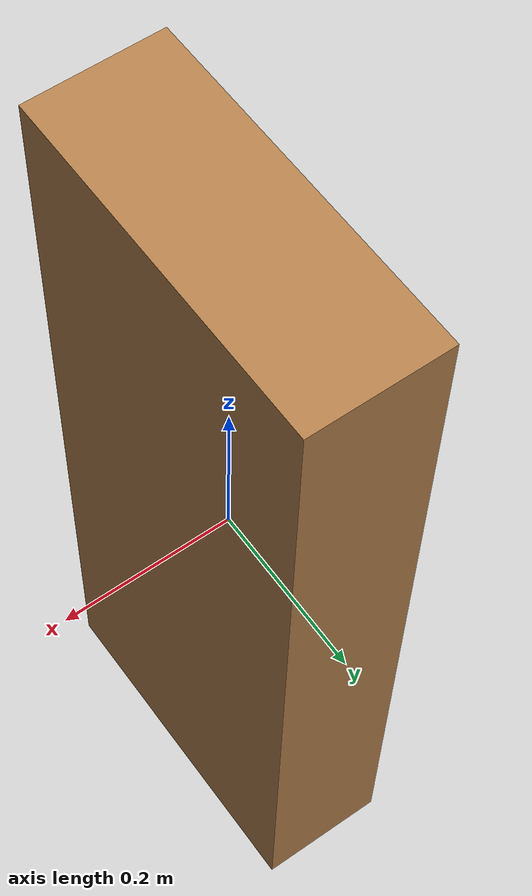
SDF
<sdf version="1.4">
  <model name="box">
    <static>1</static>
    <link name="link">
      <collision name="colision">
        <pose>0 0 0 0 0 0</pose>
        <geometry>
          <box>
            <size>0.4 0.4 1.0</size>
          </box>
        </geometry>
        <surface>
          <bounce />
          <friction>
            <ode />
          </friction>
          <contact>
            <ode />
          </contact>
        </surface>
      </collision>

      <visual name="visual">
        <pose>0 0 0 0 0 0</pose>
        <geometry>
          <box>
            <size>0.15 0.4 1.0</size>
          </box>
        </geometry>
        <material>
          <script>
            <uri>file://media/materials/scripts/gazebo.material</uri>
            <name>Gazebo/WoodPallet</name>
          </script>
        </material>
      </visual>

      <velocity_decay>
        <linear>0.000000</linear>
        <angular>0.000000</angular>
      </velocity_decay>
      <self_collide>0</self_collide>
      <kinematic>0</kinematic>
      <gravity>1</gravity>
    </link>
  </model>
</sdf>
